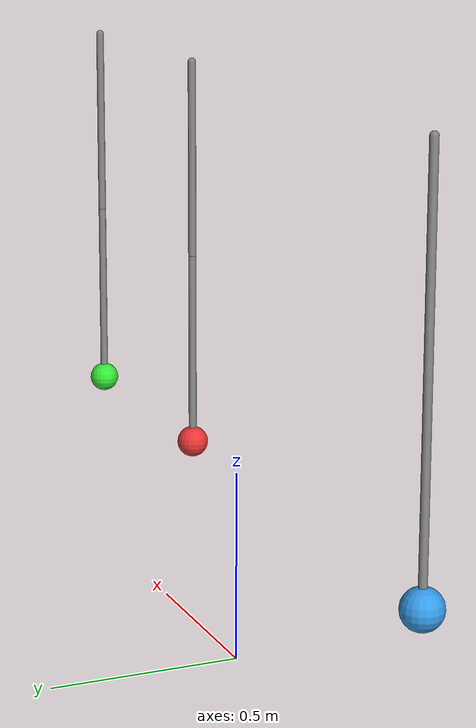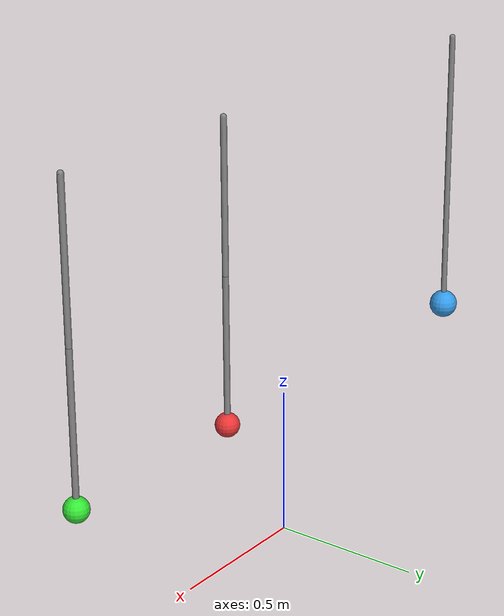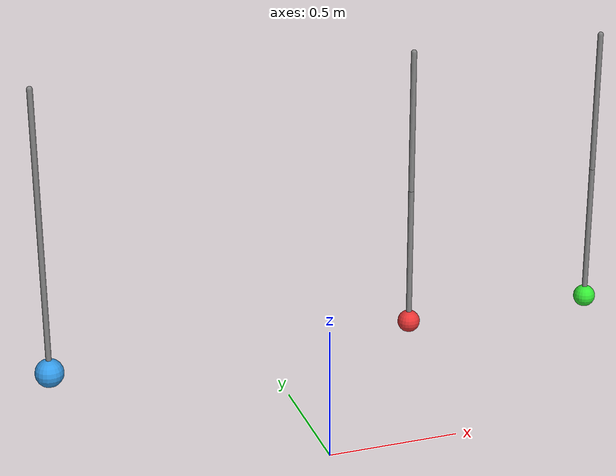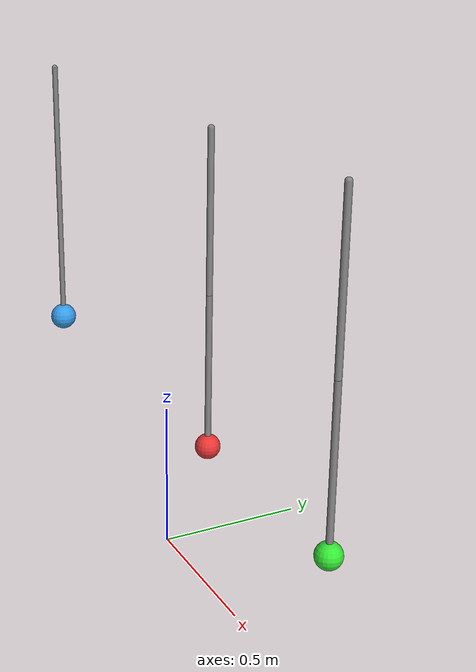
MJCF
<mujoco model="pendulums">
  <!-- 场景2: 单摆 + 双摆
       核心概念: hinge joint、能量守恒、数值积分误差、混沌现象
       左侧单摆用于验证周期公式和能量守恒
       右侧两组双摆(初始角度差0.0001度)用于展示混沌轨迹发散 -->

  <compiler angle="radian"/>

  <option timestep="0.001" gravity="0 0 -9.81" integrator="RK4"/>

  <worldbody>
    <light pos="0 0 3" dir="0 0 -1" diffuse="1 1 1"/>

    <!-- 单摆: 摆长1m，摆锤质量1kg -->
    <body name="single_pendulum_anchor" pos="-1 0 1.5">
      <body name="single_arm" pos="0 0 0">
        <joint name="single_hinge" type="hinge" axis="0 1 0" pos="0 0 0" damping="0"/>
        <geom type="capsule" fromto="0 0 0 0 0 -1" size="0.01" mass="0.01"/>
        <geom type="sphere" pos="0 0 -1" size="0.05" mass="1.0" rgba="0.2 0.6 0.9 1"/>
      </body>
    </body>

    <!-- 双摆 A: 初始角度 60度 -->
    <body name="double_A_anchor" pos="0.3 0 1.5">
      <body name="dA_link1" pos="0 0 0">
        <joint name="dA_hinge1" type="hinge" axis="0 1 0" damping="0"/>
        <geom type="capsule" fromto="0 0 0 0 0 -0.5" size="0.01" mass="0.01"/>
        <body name="dA_link2" pos="0 0 -0.5">
          <joint name="dA_hinge2" type="hinge" axis="0 1 0" damping="0"/>
          <geom type="capsule" fromto="0 0 0 0 0 -0.5" size="0.01" mass="0.01"/>
          <geom type="sphere" pos="0 0 -0.5" size="0.04" mass="0.5" rgba="0.9 0.2 0.2 1"/>
        </body>
      </body>
    </body>

    <!-- 双摆 B: 初始角度 60.0001度 (仅角度差0.0001度，用于展示混沌) -->
    <body name="double_B_anchor" pos="1 0 1.5">
      <body name="dB_link1" pos="0 0 0">
        <joint name="dB_hinge1" type="hinge" axis="0 1 0" damping="0"/>
        <geom type="capsule" fromto="0 0 0 0 0 -0.5" size="0.01" mass="0.01"/>
        <body name="dB_link2" pos="0 0 -0.5">
          <joint name="dB_hinge2" type="hinge" axis="0 1 0" damping="0"/>
          <geom type="capsule" fromto="0 0 0 0 0 -0.5" size="0.01" mass="0.01"/>
          <geom type="sphere" pos="0 0 -0.5" size="0.04" mass="0.5" rgba="0.2 0.9 0.2 1"/>
        </body>
      </body>
    </body>
  </worldbody>
</mujoco>
